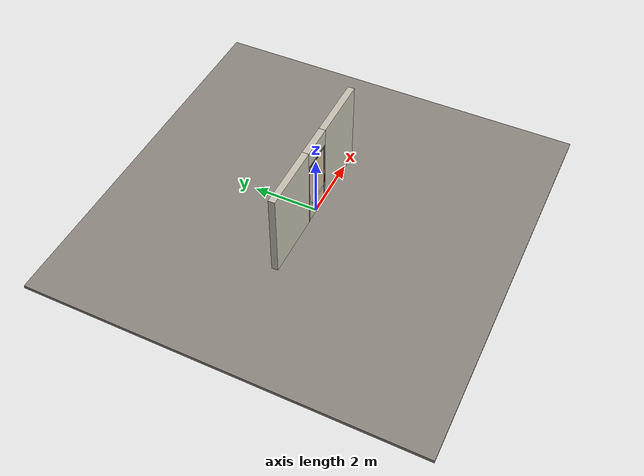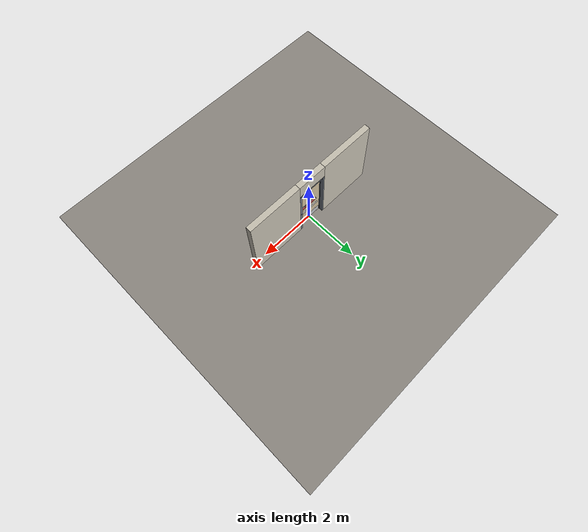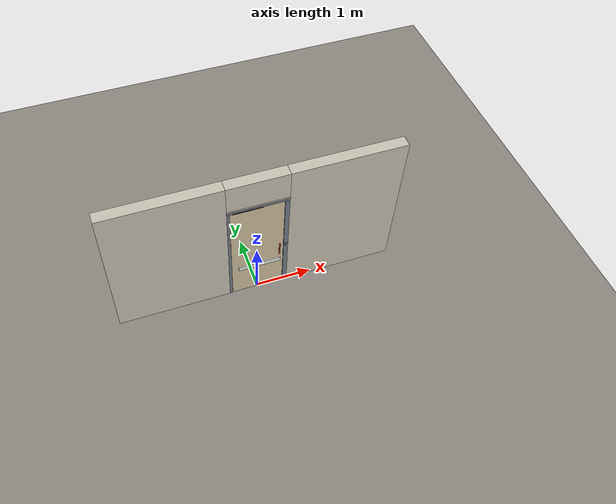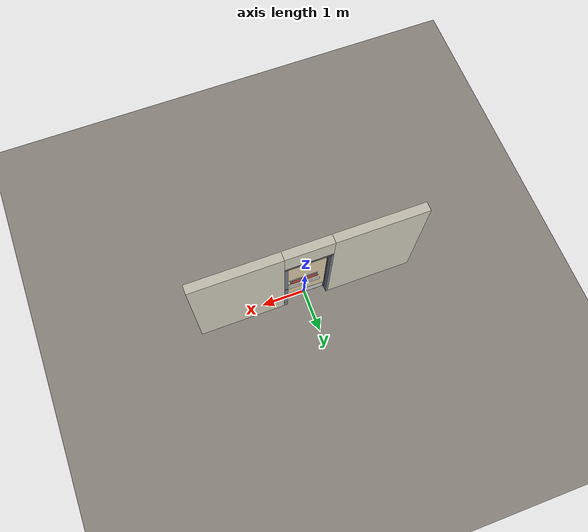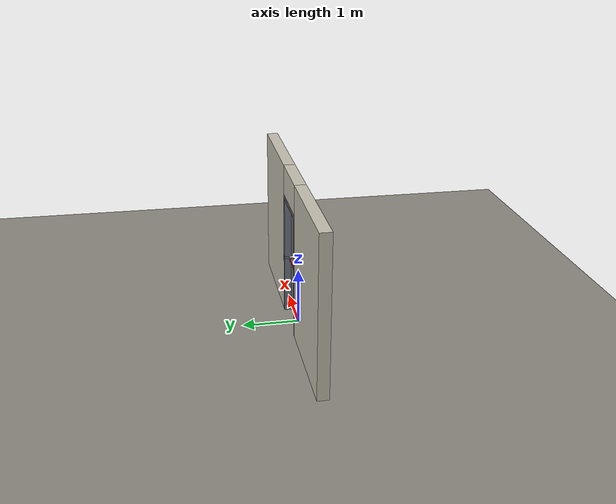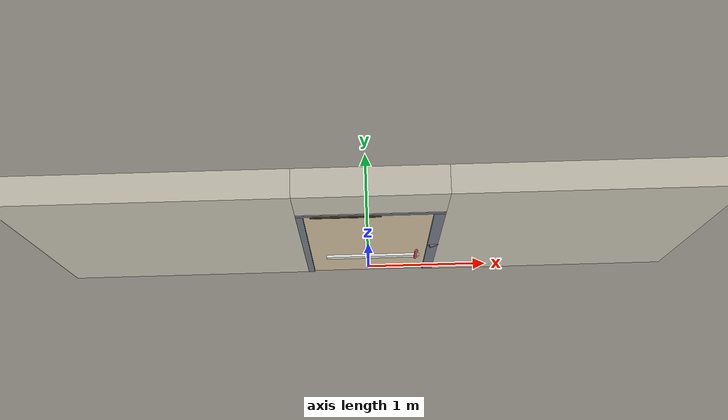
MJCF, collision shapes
<?xml version="1.0" ?>
<mujoco model="db0404_swing_single_full">
  <compiler angle="radian" meshdir="../../hardware" texturedir="../../textures" autolimits="true" inertiafromgeom="false"/>
  <option timestep="0.002" integrator="implicitfast" cone="elliptic" impratio="10" noslip_iterations="3">
    <flag multiccd="enable"/>
  </option>
  <size memory="16M"/>
  <default>
    <geom condim="4" solref="0.005 1" solimp="0.95 0.99 0.001"/>
    <joint solreflimit="0.005 1" solimplimit="0.95 0.99 0.001"/>
    <tendon solreflimit="0.005 1"/>
    <equality solref="0.002 1"/>
  </default>
  <visual>
    <headlight ambient="0.4 0.4 0.4" diffuse="0.7 0.7 0.7" specular="0.2 0.2 0.2"/>
    <quality shadowsize="4096"/>
    <map znear="0.01" zfar="60"/>
  </visual>
  <asset>
    <mesh name="exit_sign_a6449bfa2c" file="exit_sign_a6449bfa2c.obj"/>
    <mesh name="hinge_e22b26c0c1" file="hinge_e22b26c0c1.obj"/>
    <mesh name="hinge_jamb_e1d088f8dc" file="hinge_jamb_e1d088f8dc.obj"/>
    <mesh name="pull_f8d79d6331" file="pull_f8d79d6331.obj"/>
    <mesh name="touchbar_pad_2729a067b4" file="touchbar_pad_2729a067b4.obj"/>
    <material name="mat_floor" rgba="0.55 0.53 0.5 1" specular="0.2" shininess="0.15" reflectance="0"/>
    <material name="mat_wall" rgba="0.78 0.76 0.7 1" specular="0.2" shininess="0.1" reflectance="0"/>
    <material name="mat_leaf" rgba="0.82 0.75 0.62 1" specular="0.23" shininess="0.56" reflectance="0.02"/>
    <material name="mat_hinge" rgba="0.65 0.66 0.68 1" specular="0.74" shininess="0.5" reflectance="0.36"/>
    <material name="mat_op_stainless" rgba="0.75 0.76 0.77 1" specular="0.8" shininess="0.65" reflectance="0.4"/>
    <material name="mat_bolt" rgba="0.75 0.76 0.77 1" specular="0.8" shininess="0.65" reflectance="0.4"/>
    <material name="mat_frame" rgba="0.45 0.48 0.52 1" specular="0.32" shininess="0.6" reflectance="0.08"/>
    <material name="mat_seal" rgba="0.1 0.1 0.1 1" specular="0.2" shininess="0.1" reflectance="0"/>
    <material name="mat_closer" rgba="0.22 0.17 0.13 1" specular="0.8" shininess="0.6" reflectance="0.4"/>
    <material name="mat_kick" rgba="0.75 0.76 0.77 1" specular="0.8" shininess="0.65" reflectance="0.4"/>
    <material name="mat_bumper" rgba="0.92 0.92 0.9 1" specular="0.2" shininess="0.6" reflectance="0"/>
    <material name="mat_exit_sign" rgba="0.85 0.1 0.1 1" specular="0.2" shininess="0.6" reflectance="0"/>
    <material name="mat_sign_bracket" rgba="0.8 0.81 0.83 1" specular="0.8" shininess="0.6" reflectance="0.4"/>
    <texture name="skybox" type="skybox" builtin="gradient" rgb1="0.6 0.7 0.85" rgb2="0.9 0.92 0.95" width="256" height="256"/>
  </asset>
  <worldbody>
    <light name="sun" pos="1.5 -2.5 4" dir="-0.3 0.5 -0.8" directional="true" diffuse="0.8 0.8 0.8" specular="0.3 0.3 0.3" castshadow="true"/>
    <light name="fill" pos="-1.5 2.5 3" dir="0.3 -0.5 -0.7" directional="true" diffuse="0.35 0.35 0.4" castshadow="false"/>
    <camera name="robot_view" pos="0 -2.566812 1.812087" xyaxes="1 0 0 0 0.26963 0.962964" fovy="52"/>
    <camera name="far_view" pos="0 2.708813 1.812087" xyaxes="-1 0 0 0 -0.26963 0.962964" fovy="52"/>
    <camera name="iso" pos="2.004737 -2.144762 2.234138" xyaxes="0.741536 0.670913 0 -0.242917 0.268487 0.932151" fovy="46"/>
    <camera name="detail_handle" pos="0.5465 -0.897 1.32" xyaxes="0.97561 0.219512 0 -0.070934 0.315262 0.94635" fovy="38"/>
    <geom name="floor" type="box" size="6 6 0.05" pos="0 0 -0.05" material="mat_floor" group="0" contype="1" conaffinity="1" friction="0.8 0.005 0.0001" density="2400"/>
    <geom name="wall_left" type="box" size="0.99475 0.1 1.3735" pos="-1.50525 0.071 1.3735" material="mat_wall" group="0" contype="1" conaffinity="1" friction="0.6 0.005 0.0001" density="800"/>
    <geom name="wall_right" type="box" size="0.97975 0.1 1.3735" pos="1.52025 0.071 1.3735" material="mat_wall" group="0" contype="1" conaffinity="1" friction="0.6 0.005 0.0001" density="800"/>
    <geom name="wall_header" type="box" size="0.5255 0.1 0.26" pos="0.015 0.071 2.487" material="mat_wall" group="0" contype="1" conaffinity="1" friction="0.6 0.005 0.0001" density="800"/>
    <geom name="hinge_0_jamb" type="mesh" mesh="hinge_jamb_e1d088f8dc" pos="-0.4575 -0.029 0.259" material="mat_hinge" group="1" contype="0" conaffinity="0" density="7850"/>
    <geom name="hinge_1_jamb" type="mesh" mesh="hinge_jamb_e1d088f8dc" pos="-0.4575 -0.029 0.827" material="mat_hinge" group="1" contype="0" conaffinity="0" density="7850"/>
    <geom name="hinge_2_jamb" type="mesh" mesh="hinge_jamb_e1d088f8dc" pos="-0.4575 -0.029 1.395" material="mat_hinge" group="1" contype="0" conaffinity="0" density="7850"/>
    <geom name="hinge_3_jamb" type="mesh" mesh="hinge_jamb_e1d088f8dc" pos="-0.4575 -0.029 1.963" material="mat_hinge" group="1" contype="0" conaffinity="0" density="7850"/>
    <geom name="jamb_hinge" type="box" size="0.025 0.1 1.0735" pos="-0.4855 0.071 1.0735" material="mat_frame" group="0" contype="1" conaffinity="1" friction="0.6 0.005 0.0001" density="300"/>
    <geom name="strike_1040_wall_n" type="box" size="0.04 0.058 0.02" pos="0.5005 0.113 1.04" material="mat_frame" group="0" contype="1" conaffinity="1" friction="0.6 0.005 0.0001" density="300"/>
    <geom name="strike_1040_wall_p" type="box" size="0.04 0.008 0.02" pos="0.5005 0.025 1.04" material="mat_frame" group="0" contype="1" conaffinity="1" friction="0.6 0.005 0.0001" density="300"/>
    <geom name="strike_1040_ramp" type="box" size="0.04 0.034482 0.02" pos="0.508781 -0.0044 1.04" quat="0.989198 0 0 0.146587" material="mat_frame" group="0" contype="1" conaffinity="1" friction="0.12 0.005 0.0001" density="300"/>
    <geom name="strike_1040_back" type="box" size="0.0285 0.011 0.02" pos="0.512 0.044 1.04" material="mat_frame" group="0" contype="1" conaffinity="1" friction="0.6 0.005 0.0001" density="300"/>
    <geom name="jamb_strike_0" type="box" size="0.04 0.1 0.51" pos="0.5005 0.071 0.51" material="mat_frame" group="0" contype="1" conaffinity="1" friction="0.6 0.005 0.0001" density="300"/>
    <geom name="jamb_strike_1" type="box" size="0.04 0.1 0.5435" pos="0.5005 0.071 1.6035" material="mat_frame" group="0" contype="1" conaffinity="1" friction="0.6 0.005 0.0001" density="300"/>
    <geom name="jamb_head" type="box" size="0.5255 0.1 0.025" pos="0.015 0.071 2.172" material="mat_frame" group="0" contype="1" conaffinity="1" friction="0.6 0.005 0.0001" density="300"/>
    <geom name="head_stud" type="box" size="0.5255 0.1 0.015" pos="0.015 0.071 2.212" material="mat_wall" group="0" contype="1" conaffinity="1" friction="0.6 0.005 0.0001" density="500"/>
    <geom name="stop_hinge" type="box" size="0.0055 0.016 1.0735" pos="-0.455 0.0385 1.0735" material="mat_frame" group="0" contype="1" conaffinity="1" friction="0.6 0.005 0.0001" density="300"/>
    <geom name="stop_strike" type="box" size="0.0055 0.016 0.49625" pos="0.455 0.0385 0.49625" material="mat_frame" group="0" contype="1" conaffinity="1" friction="0.6 0.005 0.0001" density="300"/>
    <geom name="stop_strike_1" type="box" size="0.0055 0.016 0.52975" pos="0.455 0.0385 1.61725" material="mat_frame" group="0" contype="1" conaffinity="1" friction="0.6 0.005 0.0001" density="300"/>
    <geom name="stop_head" type="box" size="0.4605 0.016 0.0055" pos="0 0.0385 2.1415" material="mat_frame" group="0" contype="1" conaffinity="1" friction="0.6 0.005 0.0001" density="300"/>
    <geom name="seal_hinge" type="box" size="0.004 0.0025 1.0735" pos="-0.4575 0.0245 1.0735" material="mat_seal" group="1" contype="0" conaffinity="0" density="1100"/>
    <geom name="seal_strike" type="box" size="0.004 0.0025 0.49625" pos="0.4575 0.0245 0.49625" material="mat_seal" group="1" contype="0" conaffinity="0" density="1100"/>
    <geom name="seal_strike_1" type="box" size="0.004 0.0025 0.52975" pos="0.4575 0.0245 1.61725" material="mat_seal" group="1" contype="0" conaffinity="0" density="1100"/>
    <geom name="seal_head" type="box" size="0.4405 0.0025 0.008" pos="0 0.0245 2.135" material="mat_seal" group="1" contype="0" conaffinity="0" density="1100"/>
    <geom name="closer_concealed_slot" type="box" size="0.25 0.008 0.004" pos="-0.1605 -0.032 2.152" material="mat_closer" group="1" contype="0" conaffinity="0" density="2700"/>
    <geom name="exit_sign" type="mesh" mesh="exit_sign_a6449bfa2c" pos="0 0.15 2.447" material="mat_exit_sign" group="2" contype="0" conaffinity="0" density="500"/>
    <geom name="exit_sign_bracket" type="box" size="0.05775 0.00875 0.0605" pos="0 0.15 2.287" material="mat_sign_bracket" group="2" contype="0" conaffinity="0" density="7850"/>
    <site name="approach_point" pos="0 -1.5 0" quat="1 0 0 0" size="0.05" rgba="0.2 0.9 0.2 0.5" group="4"/>
    <site name="goal_point" pos="0 1.5 0" quat="1 0 0 0" size="0.05" rgba="0.2 0.9 0.2 0.5" group="4"/>
    <site name="door_plane_center" pos="0 0 1.0735" quat="1 0 0 0" size="0.02" rgba="0.2 0.9 0.2 0.5" group="4"/>
    <body name="leaf" pos="-0.4605 0 0">
      <inertial pos="0.470616 0.000946 1.009843" mass="51.771684" quat="0.499935 0.501584 0.499722 -0.498756" diaginertia="3.804615095 18.874897334 22.629477701"/>
      <joint name="leaf_hinge" type="hinge" axis="0 0 -1" pos="0.003 -0.029 0" limited="true" range="0 1.570796" solreflimit="0.02 1" damping="10.268966" frictionloss="2.082435" stiffness="11.681973" springref="-1.849003" armature="0.02"/>
      <geom name="leaf_slab" type="box" size="0.457 0.022 1.067" pos="0.46 0 1.076" material="mat_leaf" group="0" contype="1" conaffinity="1" friction="0.4 0.005 0.0001" density="1"/>
      <geom name="hinge_0" type="mesh" mesh="hinge_e22b26c0c1" pos="0.003 -0.029 0.259" material="mat_hinge" group="1" contype="0" conaffinity="0" density="7850"/>
      <geom name="hinge_1" type="mesh" mesh="hinge_e22b26c0c1" pos="0.003 -0.029 0.827" material="mat_hinge" group="1" contype="0" conaffinity="0" density="7850"/>
      <geom name="hinge_2" type="mesh" mesh="hinge_e22b26c0c1" pos="0.003 -0.029 1.395" material="mat_hinge" group="1" contype="0" conaffinity="0" density="7850"/>
      <geom name="hinge_3" type="mesh" mesh="hinge_e22b26c0c1" pos="0.003 -0.029 1.963" material="mat_hinge" group="1" contype="0" conaffinity="0" density="7850"/>
      <geom name="leaf_exit_device_rail" type="box" size="0.31705 0.006 0.025" pos="0.51995 0.028 1.04" material="mat_op_stainless" group="0" contype="1" conaffinity="1" friction="0.6 0.005 0.0001" density="3000"/>
      <geom name="leaf_exit_device_rail_end_n" type="box" size="0.01 0.0325 0.025" pos="0.2129 0.0545 1.04" material="mat_op_stainless" group="0" contype="1" conaffinity="1" friction="0.6 0.005 0.0001" density="3000"/>
      <geom name="leaf_exit_device_rail_end_p" type="box" size="0.01 0.0325 0.025" pos="0.827 0.0545 1.04" material="mat_op_stainless" group="0" contype="1" conaffinity="1" friction="0.6 0.005 0.0001" density="3000"/>
      <geom name="leaf_exit_device_case" type="box" size="0.034 0.034125 0.0375" pos="0.871 0.056125 1.04" material="mat_op_stainless" group="0" contype="1" conaffinity="1" friction="0.6 0.005 0.0001" density="3000"/>
      <geom name="leaf_far_pull_n" type="mesh" mesh="pull_f8d79d6331" pos="0.827 -0.022 1.04" quat="0.707107 0.707107 0 0" material="mat_op_stainless" group="1" contype="0" conaffinity="0" density="3000"/>
      <geom name="leaf_far_pull_col_n" type="capsule" size="0.0125 0.13" pos="0.827 -0.097 1.04" material="mat_op_stainless" group="3" contype="1" conaffinity="1" rgba="0.8 0.3 0.3 0.25" friction="0.7 0.01 0.0001" density="3000"/>
      <geom name="kick_plate_p" type="box" size="0.427 0.0008 0.125" pos="0.46 0.0228 0.144" material="mat_kick" group="2" contype="0" conaffinity="0" density="7900"/>
      <geom name="bumper_rail_n" type="box" size="0.372 0.01 0.04" pos="0.495 -0.032 0.659" material="mat_bumper" group="0" contype="1" conaffinity="1" friction="0.6 0.005 0.0001" density="1200"/>
      <geom name="bumper_rail_p" type="box" size="0.372 0.01 0.04" pos="0.495 0.032 0.659" material="mat_bumper" group="0" contype="1" conaffinity="1" friction="0.6 0.005 0.0001" density="1200"/>
      <site name="leaf_far_pull_grip_n" pos="0.827 -0.097 1.04" quat="1 0 0 0" size="0.012" rgba="0.2 0.9 0.2 0.5" group="4"/>
      <site name="leaf_edge_mid" pos="0.917 0 1.067" quat="1 0 0 0" size="0.02" rgba="0.2 0.9 0.2 0.5" group="4"/>
      <body name="leaf_exit_device" pos="0.51995 0.022 1.04">
        <inertial pos="0 0.05 0" mass="4.76361" quat="0 0 0.707107 0.707107" diaginertia="0.00116113 0.137653089 0.138099678"/>
        <joint name="leaf_exit_device_slide" type="slide" axis="0 -1 0" limited="true" range="0 0.016" damping="153.575154" frictionloss="0.5" stiffness="1200" springref="-0.015" armature="0.15"/>
        <geom name="leaf_exit_device_pad" type="mesh" mesh="touchbar_pad_2729a067b4" pos="0 0 0" quat="-0.707107 0.707107 0 0" material="mat_op_stainless" group="1" contype="0" conaffinity="0" density="3000"/>
        <geom name="leaf_exit_device_pad_col" type="box" size="0.29405 0.015 0.0225" pos="0 0.05 0" material="mat_op_stainless" group="3" contype="1" conaffinity="1" rgba="0.8 0.3 0.3 0.25" friction="0.8 0.01 0.0001" density="3000"/>
        <site name="leaf_exit_device_push" pos="0 0.065 0" quat="1 0 0 0" size="0.015" rgba="0.2 0.9 0.2 0.5" group="4"/>
      </body>
      <body name="leaf_latch_bolt" pos="0.917 0.044 1.04">
        <inertial pos="-0.0055 0 0" mass="0.102826" quat="0.92388 -0.382683 0 0" diaginertia="0.000004365 0.000018287 0.000018287"/>
        <joint name="leaf_latch_bolt_slide" type="slide" axis="-1 0 0" limited="true" range="0 0.019" damping="2" frictionloss="0.3" stiffness="800" springref="-0.01" armature="0.1"/>
        <geom name="leaf_latch_bolt_capsule" type="capsule" size="0.0095 0.015" pos="-0.0055 0 0" quat="0.707107 0 0.707107 0" material="mat_bolt" group="0" contype="1" conaffinity="1" friction="0.2 0.005 0.0001" density="8500"/>
      </body>
    </body>
  </worldbody>
  <tendon>
    <fixed name="leaf_latch_bolt_coupling" limited="true" range="0 10">
      <joint joint="leaf_latch_bolt_slide" coef="1"/>
      <joint joint="leaf_exit_device_slide" coef="-1.357143"/>
    </fixed>
  </tendon>
  <sensor>
    <jointpos name="leaf_hinge_pos" joint="leaf_hinge"/>
    <jointvel name="leaf_hinge_vel" joint="leaf_hinge"/>
    <jointpos name="leaf_exit_device_slide_pos" joint="leaf_exit_device_slide"/>
    <jointvel name="leaf_exit_device_slide_vel" joint="leaf_exit_device_slide"/>
    <jointpos name="leaf_latch_bolt_slide_pos" joint="leaf_latch_bolt_slide"/>
    <jointvel name="leaf_latch_bolt_slide_vel" joint="leaf_latch_bolt_slide"/>
  </sensor>
</mujoco>
